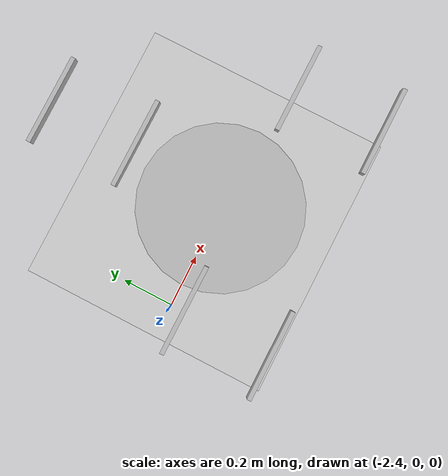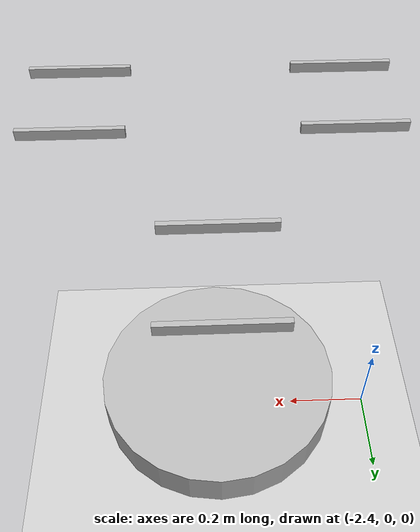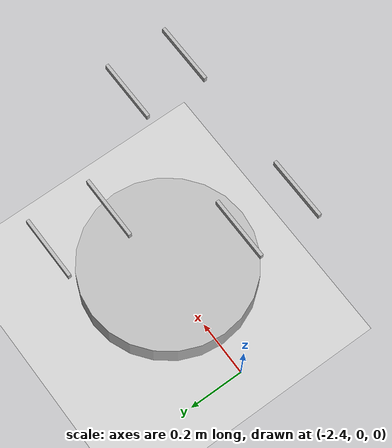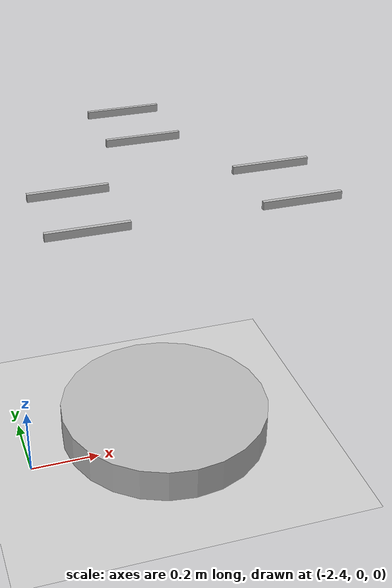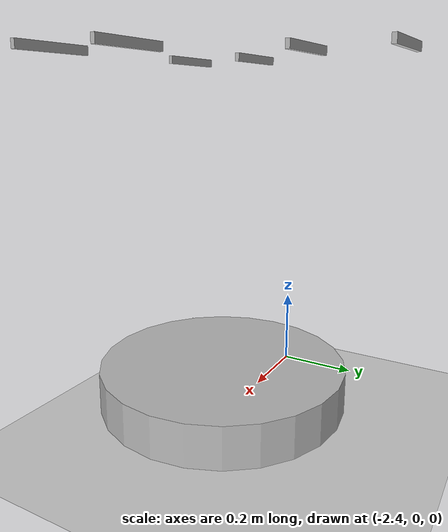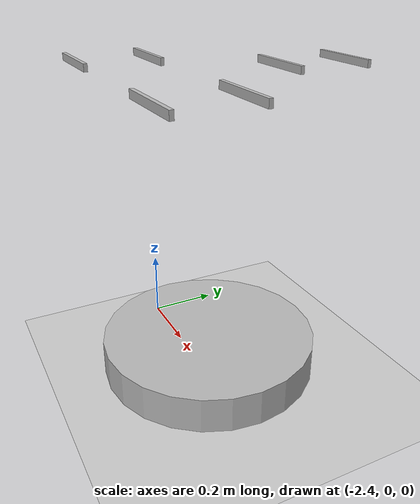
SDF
<?xml version="1.0" ?>
<sdf version="1.5">
  <world name="default">
    <!-- A gazebo links attacher -->
    <plugin name="ros_link_attacher_plugin" filename="libgazebo_ros_link_attacher.so"/>
    <!-- A global light source -->
    <include>
      <uri>model://sun</uri>
    </include>
    <!-- A ground plane -->
    <include>
      <uri>model://ground_plane</uri>
    </include>
    <model name='shelfs'>
      <model name='shelf_0'>
        <include>
          <pose>-1.74 -0.15 0.685 0 0 1.57</pose>
          <uri>model://shelf</uri>
        </include>
      </model>
      <model name='shelf_1'>
        <include>
          <pose>-2 0.3 0.685 0 0 1.57</pose>
          <uri>model://shelf</uri>
        </include>
      </model>
      <model name='shelf_2'>
        <include>
          <pose>-2.26 -0.15 0.685 0 0 1.57</pose>
          <uri>model://shelf</uri>
        </include>
      </model>
    </model>
    <include>
      <uri>model://payload4iris</uri>
      <pose>-2 0 0.1 0 0 0</pose>
    </include>
  </world>
</sdf>

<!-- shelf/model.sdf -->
<sdf version="1.5">
  <model name="shelf">
    <static>true</static>
    <link name="link">
      <static>1</static>
      <pose>-0.1 0 0.2 0 0 0</pose>
      <collision name="collision">
        <geometry>
          <box>
            <size>0.01 0.2 0.02</size>
          </box>
        </geometry>
      </collision>
      <visual name="visual">
        <geometry>
          <box>
            <size>0.01 0.2 0.02</size>
          </box>
        </geometry>
      </visual>
    </link>

    <link name="link1">
      <static>1</static>
      <pose>0.1 0 0.2 0 0 0</pose>
      <collision name="collision">
        <geometry>
          <box>
            <size>0.01 0.2 0.02</size>
          </box>
        </geometry>
      </collision>
      <visual name="visual">
        <geometry>
          <box>
            <size>0.01 0.2 0.02</size>
          </box>
        </geometry>
      </visual>
    </link>
  </model>
</sdf>

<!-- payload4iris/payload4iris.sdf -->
<sdf version="1.6">
  <model name="payload">
    <pose>0 0 0 0 0 0</pose>
    <static>false</static>
    <link name="link">
      <inertial>
        <mass>1.0</mass>
        <inertia> <!-- inertias are tricky to compute -->
          <ixx>0.0415</ixx>       <!-- for a box: ixx = 0.083 * mass * (y*y + z*z) -->
          <ixy>0.0</ixy>         <!-- for a box: ixy = 0 -->
          <ixz>0.0</ixz>         <!-- for a box: ixz = 0 -->
          <iyy>0.0415</iyy>       <!-- for a box: iyy = 0.083 * mass * (x*x + z*z) -->
          <iyz>0.0</iyz>         <!-- for a box: iyz = 0 -->
          <izz>0.0415</izz>       <!-- for a box: izz = 0.083 * mass * (x*x + y*y) -->
        </inertia>
      </inertial>
      <collision name="collision">
          <geometry>
            <cylinder>
              <radius>0.3</radius>
              <length>0.1</length>
            </cylinder>
          </geometry>
        </collision>
        <visual name="visual">
          <geometry>
            <cylinder>
              <radius>0.3</radius>
              <length>0.1</length>
            </cylinder>
          </geometry>
        </visual>
    </link>
  </model>
</sdf>
